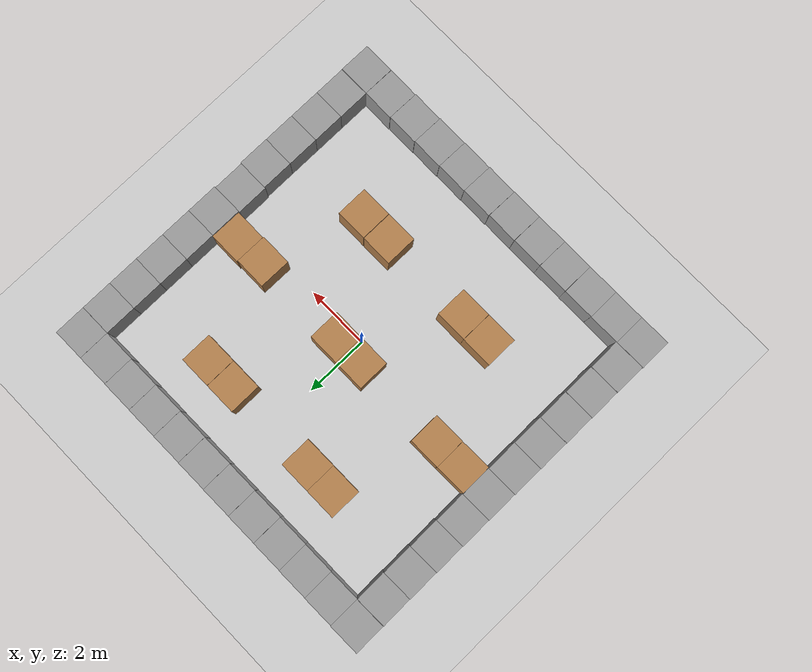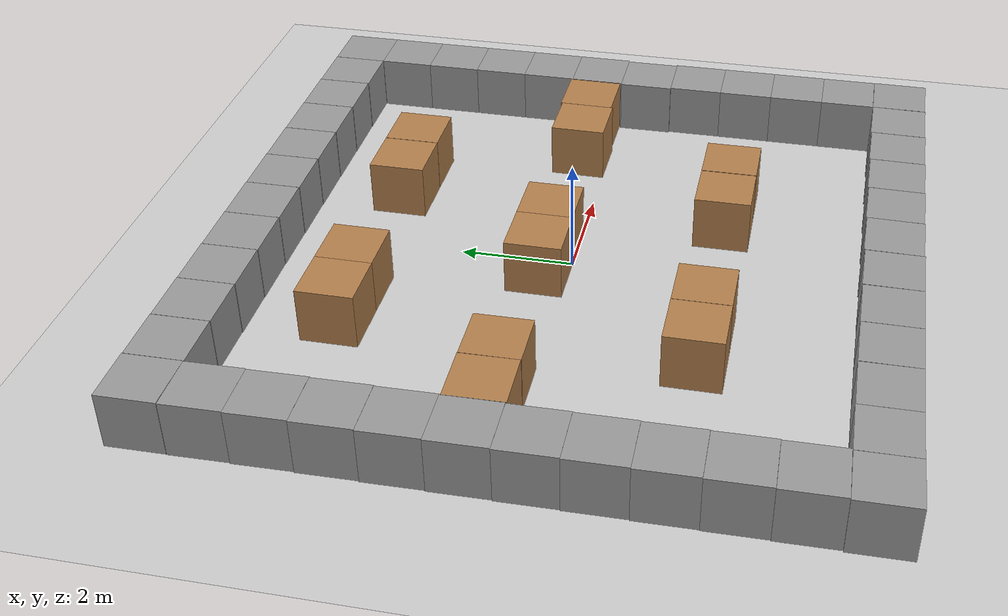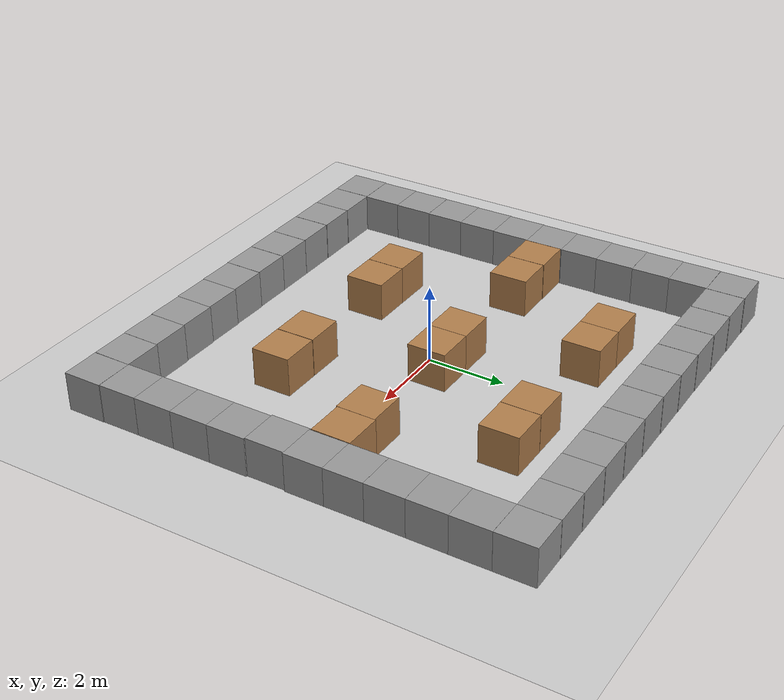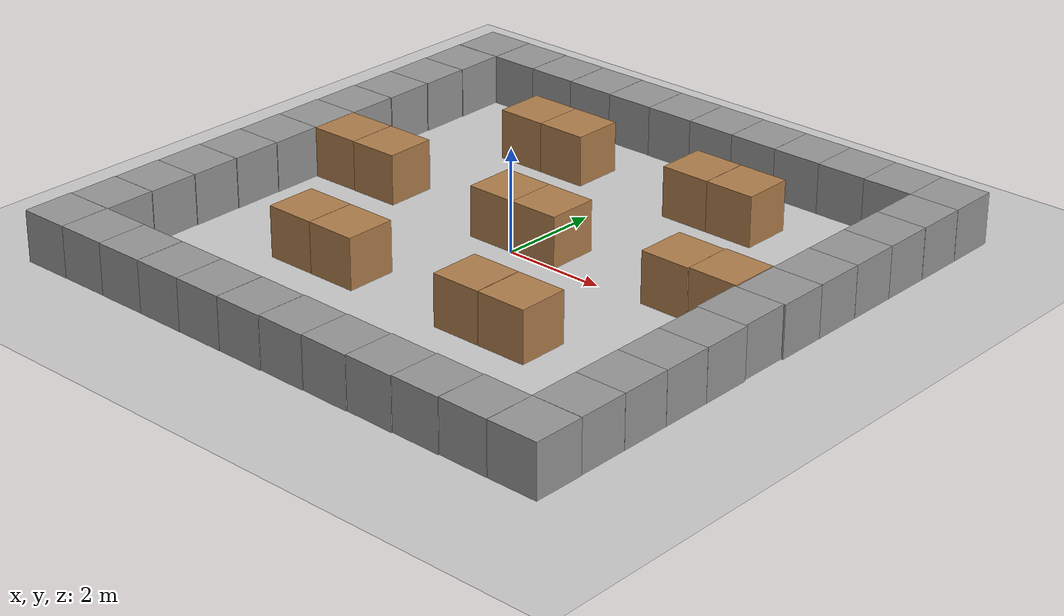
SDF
<sdf version="1.6">
 <world name="default">
  <light name="sun" type="directional">
   <pose>0 0 10 0 -0 0</pose>
   <diffuse>0.8 0.8 0.8 1</diffuse>
   <specular>0.1 0.1 0.1 1</specular>
   <attenuation>
    <range>1000</range>
    <constant>0.9</constant>
    <linear>0.01</linear>
    <quadratic>0.001</quadratic>
   </attenuation>
   <direction>-0.5 0.5 -1</direction>
  </light>
  <model name="ground_plane">
   <static>1</static>
   <link name="link">
    <collision name="collision">
     <geometry><plane><normal>0 0 1</normal><size>100 100</size></plane></geometry>
     <surface><friction><ode><mu>100</mu><mu2>50</mu2></ode></friction></surface>
    </collision>
    <visual name="visual">
     <cast_shadows>0</cast_shadows>
     <geometry><plane><normal>0 0 1</normal><size>100 100</size></plane></geometry>
     <material>
      <script><uri>file://media/materials/scripts/gazebo.material</uri><name>Gazebo/Grey</name></script>
     </material>
    </visual>
   </link>
  </model>
  <gravity>0 0 -9.8</gravity>
  <magnetic_field>6e-06 2.3e-05 -4.2e-05</magnetic_field>
  <atmosphere type="adiabatic"/>
  <physics name="default_physics" default="0" type="ode">
   <max_step_size>0.001</max_step_size>
   <real_time_factor>1</real_time_factor>
   <real_time_update_rate>1000</real_time_update_rate>
  </physics>
  <scene><ambient>0.4 0.4 0.4 1</ambient><background>0.7 0.7 0.7 1</background><shadows>1</shadows></scene>
  <spherical_coordinates>
   <surface_model>EARTH_WGS84</surface_model>
   <latitude_deg>0</latitude_deg>
   <longitude_deg>0</longitude_deg>
   <elevation>0</elevation>
   <heading_deg>0</heading_deg>
  </spherical_coordinates>
  <model name="unit_box_0">
   <pose>-4.49683 0.492419 0.499995 -1e-05 -0 0.01845</pose>
   <link name="link">
    <inertial>
     <mass>1</mass>
     <inertia>
      <ixx>0.166667</ixx>
      <ixy>0</ixy>
      <ixz>0</ixz>
      <iyy>0.166667</iyy>
      <iyz>0</iyz>
      <izz>0.166667</izz>
     </inertia>
    </inertial>
    <collision name="collision"><geometry><box><size>1 1 1</size></box></geometry></collision>
    <visual name="visual">
     <geometry><box><size>1 1 1</size></box></geometry>
     <material>
      <script><name>Gazebo/Wood</name><uri>file://media/materials/scripts/gazebo.material</uri></script>
     </material>
    </visual>
   </link>
  </model>
  <model name="unit_box_1">
   <pose>-3.49366 0.501358 0.499995 0 -1e-05 0.012151</pose>
   <link name="link">
    <inertial>
     <mass>1</mass>
     <inertia>
      <ixx>0.166667</ixx>
      <ixy>0</ixy>
      <ixz>0</ixz>
      <iyy>0.166667</iyy>
      <iyz>0</iyz>
      <izz>0.166667</izz>
     </inertia>
    </inertial>
    <collision name="collision"><geometry><box><size>1 1 1</size></box></geometry></collision>
    <visual name="visual">
     <geometry><box><size>1 1 1</size></box></geometry>
     <material>
      <script><name>Gazebo/Wood</name><uri>file://media/materials/scripts/gazebo.material</uri></script>
     </material>
    </visual>
   </link>
  </model>
  <model name="unit_box_6">
   <pose>3.4789 0.500929 0.499995 0 -1e-05 -0.007308</pose>
   <link name="link">
    <inertial>
     <mass>1</mass>
     <inertia>
      <ixx>0.166667</ixx>
      <ixy>0</ixy>
      <ixz>0</ixz>
      <iyy>0.166667</iyy>
      <iyz>0</iyz>
      <izz>0.166667</izz>
     </inertia>
    </inertial>
    <collision name="collision"><geometry><box><size>1 1 1</size></box></geometry></collision>
    <visual name="visual">
     <geometry><box><size>1 1 1</size></box></geometry>
     <material>
      <script><name>Gazebo/Wood</name><uri>file://media/materials/scripts/gazebo.material</uri></script>
     </material>
    </visual>
   </link>
  </model>
  <model name="unit_box_7">
   <pose>4.47957 0.524833 0.499995 0 -1e-05 -0.006362</pose>
   <link name="link">
    <inertial>
     <mass>1</mass>
     <inertia>
      <ixx>0.166667</ixx>
      <ixy>0</ixy>
      <ixz>0</ixz>
      <iyy>0.166667</iyy>
      <iyz>0</iyz>
      <izz>0.166667</izz>
     </inertia>
    </inertial>
    <collision name="collision"><geometry><box><size>1 1 1</size></box></geometry></collision>
    <visual name="visual">
     <geometry><box><size>1 1 1</size></box></geometry>
     <material>
      <script><name>Gazebo/Wood</name><uri>file://media/materials/scripts/gazebo.material</uri></script>
     </material>
    </visual>
   </link>
  </model>
  <model name="unit_box_8">
   <pose>-2.50432 -2.50004 0.499995 0 1e-05 0.000101</pose>
   <link name="link">
    <inertial>
     <mass>1</mass>
     <inertia>
      <ixx>0.166667</ixx>
      <ixy>0</ixy>
      <ixz>0</ixz>
      <iyy>0.166667</iyy>
      <iyz>0</iyz>
      <izz>0.166667</izz>
     </inertia>
    </inertial>
    <collision name="collision"><geometry><box><size>1 1 1</size></box></geometry></collision>
    <visual name="visual">
     <geometry><box><size>1 1 1</size></box></geometry>
     <material>
      <script><name>Gazebo/Wood</name><uri>file://media/materials/scripts/gazebo.material</uri></script>
     </material>
    </visual>
   </link>
  </model>
  <model name="unit_box_9">
   <pose>-1.49998 -2.49998 0.499995 0 1e-05 0.000107</pose>
   <link name="link">
    <inertial>
     <mass>1</mass>
     <inertia>
      <ixx>0.166667</ixx>
      <ixy>0</ixy>
      <ixz>0</ixz>
      <iyy>0.166667</iyy>
      <iyz>0</iyz>
      <izz>0.166667</izz>
     </inertia>
    </inertial>
    <collision name="collision"><geometry><box><size>1 1 1</size></box></geometry></collision>
    <visual name="visual">
     <geometry><box><size>1 1 1</size></box></geometry>
     <material>
      <script><name>Gazebo/Wood</name><uri>file://media/materials/scripts/gazebo.material</uri></script>
     </material>
    </visual>
   </link>
  </model>
  <model name="unit_box_10">
   <pose>1.48697 -2.50031 0.499995 1e-05 -0 0.000579</pose>
   <link name="link">
    <inertial>
     <mass>1</mass>
     <inertia>
      <ixx>0.166667</ixx>
      <ixy>0</ixy>
      <ixz>0</ixz>
      <iyy>0.166667</iyy>
      <iyz>0</iyz>
      <izz>0.166667</izz>
     </inertia>
    </inertial>
    <collision name="collision"><geometry><box><size>1 1 1</size></box></geometry></collision>
    <visual name="visual">
     <geometry><box><size>1 1 1</size></box></geometry>
     <material>
      <script><name>Gazebo/Wood</name><uri>file://media/materials/scripts/gazebo.material</uri></script>
     </material>
    </visual>
   </link>
  </model>
  <model name="unit_box_11">
   <pose>2.5 -2.49998 0.499995 0 1e-05 0.000577</pose>
   <link name="link">
    <inertial>
     <mass>1</mass>
     <inertia>
      <ixx>0.166667</ixx>
      <ixy>0</ixy>
      <ixz>0</ixz>
      <iyy>0.166667</iyy>
      <iyz>0</iyz>
      <izz>0.166667</izz>
     </inertia>
    </inertial>
    <collision name="collision"><geometry><box><size>1 1 1</size></box></geometry></collision>
    <visual name="visual">
     <geometry><box><size>1 1 1</size></box></geometry>
     <material>
      <script><name>Gazebo/Wood</name><uri>file://media/materials/scripts/gazebo.material</uri></script>
     </material>
    </visual>
   </link>
  </model>
  <model name="unit_box_12">
   <pose>-2.5 3.50002 0.499995 0 1e-05 0</pose>
   <link name="link">
    <inertial>
     <mass>1</mass>
     <inertia>
      <ixx>0.166667</ixx>
      <ixy>0</ixy>
      <ixz>0</ixz>
      <iyy>0.166667</iyy>
      <iyz>0</iyz>
      <izz>0.166667</izz>
     </inertia>
    </inertial>
    <collision name="collision"><geometry><box><size>1 1 1</size></box></geometry></collision>
    <visual name="visual">
     <geometry><box><size>1 1 1</size></box></geometry>
     <material>
      <script><name>Gazebo/Wood</name><uri>file://media/materials/scripts/gazebo.material</uri></script>
     </material>
    </visual>
   </link>
  </model>
  <model name="unit_box_13">
   <pose>-1.49999 3.50002 0.499995 0 1e-05 1.3e-05</pose>
   <link name="link">
    <inertial>
     <mass>1</mass>
     <inertia>
      <ixx>0.166667</ixx>
      <ixy>0</ixy>
      <ixz>0</ixz>
      <iyy>0.166667</iyy>
      <iyz>0</iyz>
      <izz>0.166667</izz>
     </inertia>
    </inertial>
    <collision name="collision"><geometry><box><size>1 1 1</size></box></geometry></collision>
    <visual name="visual">
     <geometry><box><size>1 1 1</size></box></geometry>
     <material>
      <script><name>Gazebo/Wood</name><uri>file://media/materials/scripts/gazebo.material</uri></script>
     </material>
    </visual>
   </link>
  </model>
  <model name="unit_box_14">
   <pose>1.49419 3.5002 0.499995 0 1e-05 -0.000432</pose>
   <link name="link">
    <inertial>
     <mass>1</mass>
     <inertia>
      <ixx>0.166667</ixx>
      <ixy>0</ixy>
      <ixz>0</ixz>
      <iyy>0.166667</iyy>
      <iyz>0</iyz>
      <izz>0.166667</izz>
     </inertia>
    </inertial>
    <collision name="collision"><geometry><box><size>1 1 1</size></box></geometry></collision>
    <visual name="visual">
     <geometry><box><size>1 1 1</size></box></geometry>
     <material>
      <script><name>Gazebo/Wood</name><uri>file://media/materials/scripts/gazebo.material</uri></script>
     </material>
    </visual>
   </link>
  </model>
  <model name="unit_box_15">
   <pose>2.5 3.5 0.499995 -1e-05 -0 -0.000436</pose>
   <link name="link">
    <inertial>
     <mass>1</mass>
     <inertia>
      <ixx>0.166667</ixx>
      <ixy>0</ixy>
      <ixz>0</ixz>
      <iyy>0.166667</iyy>
      <iyz>0</iyz>
      <izz>0.166667</izz>
     </inertia>
    </inertial>
    <collision name="collision"><geometry><box><size>1 1 1</size></box></geometry></collision>
    <visual name="visual">
     <geometry><box><size>1 1 1</size></box></geometry>
     <material>
      <script><name>Gazebo/Wood</name><uri>file://media/materials/scripts/gazebo.material</uri></script>
     </material>
    </visual>
   </link>
  </model>
  <model name="unit_box_2">
   <pose>-5.51352 -5.51255 0.499995 -1e-05 -0 0.009769</pose>
   <link name="link">
    <inertial>
     <mass>1</mass>
     <inertia>
      <ixx>0.166667</ixx>
      <ixy>0</ixy>
      <ixz>0</ixz>
      <iyy>0.166667</iyy>
      <iyz>0</iyz>
      <izz>0.166667</izz>
     </inertia>
    </inertial>
    <collision name="collision"><geometry><box><size>1 1 1</size></box></geometry></collision>
    <visual name="visual">
     <geometry><box><size>1 1 1</size></box></geometry>
     <material>
      <script><name>Gazebo/Grey</name><uri>file://media/materials/scripts/gazebo.material</uri></script>
     </material>
    </visual>
   </link>
  </model>
  <model name="unit_box_3">
   <pose>-4.51201 -5.5017 0.499995 1e-05 -0 0.006627</pose>
   <link name="link">
    <inertial>
     <mass>1</mass>
     <inertia>
      <ixx>0.166667</ixx>
      <ixy>0</ixy>
      <ixz>0</ixz>
      <iyy>0.166667</iyy>
      <iyz>0</iyz>
      <izz>0.166667</izz>
     </inertia>
    </inertial>
    <collision name="collision"><geometry><box><size>1 1 1</size></box></geometry></collision>
    <visual name="visual">
     <geometry><box><size>1 1 1</size></box></geometry>
     <material>
      <script><name>Gazebo/Grey</name><uri>file://media/materials/scripts/gazebo.material</uri></script>
     </material>
    </visual>
   </link>
  </model>
  <model name="unit_box_16">
   <pose>-3.51171 -5.50185 0.499995 1e-05 -0 0.006086</pose>
   <link name="link">
    <inertial>
     <mass>1</mass>
     <inertia>
      <ixx>0.166667</ixx>
      <ixy>0</ixy>
      <ixz>0</ixz>
      <iyy>0.166667</iyy>
      <iyz>0</iyz>
      <izz>0.166667</izz>
     </inertia>
    </inertial>
    <collision name="collision"><geometry><box><size>1 1 1</size></box></geometry></collision>
    <visual name="visual">
     <geometry><box><size>1 1 1</size></box></geometry>
     <material>
      <script><name>Gazebo/Grey</name><uri>file://media/materials/scripts/gazebo.material</uri></script>
     </material>
    </visual>
   </link>
  </model>
  <model name="unit_box_17">
   <pose>-2.50808 -5.50169 0.499995 1e-05 0 -0.001179</pose>
   <link name="link">
    <inertial>
     <mass>1</mass>
     <inertia>
      <ixx>0.166667</ixx>
      <ixy>0</ixy>
      <ixz>0</ixz>
      <iyy>0.166667</iyy>
      <iyz>0</iyz>
      <izz>0.166667</izz>
     </inertia>
    </inertial>
    <collision name="collision"><geometry><box><size>1 1 1</size></box></geometry></collision>
    <visual name="visual">
     <geometry><box><size>1 1 1</size></box></geometry>
     <material>
      <script><name>Gazebo/Grey</name><uri>file://media/materials/scripts/gazebo.material</uri></script>
     </material>
    </visual>
   </link>
  </model>
  <model name="unit_box_18">
   <pose>-1.50666 -5.50295 0.499995 1e-05 0 -0.004037</pose>
   <link name="link">
    <inertial>
     <mass>1</mass>
     <inertia>
      <ixx>0.166667</ixx>
      <ixy>0</ixy>
      <ixz>0</ixz>
      <iyy>0.166667</iyy>
      <iyz>0</iyz>
      <izz>0.166667</izz>
     </inertia>
    </inertial>
    <collision name="collision"><geometry><box><size>1 1 1</size></box></geometry></collision>
    <visual name="visual">
     <geometry><box><size>1 1 1</size></box></geometry>
     <material>
      <script><name>Gazebo/Grey</name><uri>file://media/materials/scripts/gazebo.material</uri></script>
     </material>
    </visual>
   </link>
  </model>
  <model name="unit_box_19">
   <pose>-0.50284 -5.50492 0.499995 0 -1e-05 -0.011695</pose>
   <link name="link">
    <inertial>
     <mass>1</mass>
     <inertia>
      <ixx>0.166667</ixx>
      <ixy>0</ixy>
      <ixz>0</ixz>
      <iyy>0.166667</iyy>
      <iyz>0</iyz>
      <izz>0.166667</izz>
     </inertia>
    </inertial>
    <collision name="collision"><geometry><box><size>1 1 1</size></box></geometry></collision>
    <visual name="visual">
     <geometry><box><size>1 1 1</size></box></geometry>
     <material>
      <script><name>Gazebo/Grey</name><uri>file://media/materials/scripts/gazebo.material</uri></script>
     </material>
    </visual>
   </link>
  </model>
  <model name="unit_box_20">
   <pose>0.500206 -5.50139 0.499995 -1e-05 -0 -0.017529</pose>
   <link name="link">
    <inertial>
     <mass>1</mass>
     <inertia>
      <ixx>0.166667</ixx>
      <ixy>0</ixy>
      <ixz>0</ixz>
      <iyy>0.166667</iyy>
      <iyz>0</iyz>
      <izz>0.166667</izz>
     </inertia>
    </inertial>
    <collision name="collision"><geometry><box><size>1 1 1</size></box></geometry></collision>
    <visual name="visual">
     <geometry><box><size>1 1 1</size></box></geometry>
     <material>
      <script><name>Gazebo/Grey</name><uri>file://media/materials/scripts/gazebo.material</uri></script>
     </material>
    </visual>
   </link>
  </model>
  <model name="unit_box_21">
   <pose>1.50038 -5.50343 0.499995 -0 1e-05 -0.017481</pose>
   <link name="link">
    <inertial>
     <mass>1</mass>
     <inertia>
      <ixx>0.166667</ixx>
      <ixy>0</ixy>
      <ixz>0</ixz>
      <iyy>0.166667</iyy>
      <iyz>0</iyz>
      <izz>0.166667</izz>
     </inertia>
    </inertial>
    <collision name="collision"><geometry><box><size>1 1 1</size></box></geometry></collision>
    <visual name="visual">
     <geometry><box><size>1 1 1</size></box></geometry>
     <material>
      <script><name>Gazebo/Grey</name><uri>file://media/materials/scripts/gazebo.material</uri></script>
     </material>
    </visual>
   </link>
  </model>
  <model name="unit_box_22">
   <pose>2.50079 -5.50219 0.499995 0 1e-05 -0.017021</pose>
   <link name="link">
    <inertial>
     <mass>1</mass>
     <inertia>
      <ixx>0.166667</ixx>
      <ixy>0</ixy>
      <ixz>0</ixz>
      <iyy>0.166667</iyy>
      <iyz>0</iyz>
      <izz>0.166667</izz>
     </inertia>
    </inertial>
    <collision name="collision"><geometry><box><size>1 1 1</size></box></geometry></collision>
    <visual name="visual">
     <geometry><box><size>1 1 1</size></box></geometry>
     <material>
      <script><name>Gazebo/Grey</name><uri>file://media/materials/scripts/gazebo.material</uri></script>
     </material>
    </visual>
   </link>
  </model>
  <model name="unit_box_23">
   <pose>3.50126 -5.49957 0.499995 0 -1e-05 -0.016436</pose>
   <link name="link">
    <inertial>
     <mass>1</mass>
     <inertia>
      <ixx>0.166667</ixx>
      <ixy>0</ixy>
      <ixz>0</ixz>
      <iyy>0.166667</iyy>
      <iyz>0</iyz>
      <izz>0.166667</izz>
     </inertia>
    </inertial>
    <collision name="collision"><geometry><box><size>1 1 1</size></box></geometry></collision>
    <visual name="visual">
     <geometry><box><size>1 1 1</size></box></geometry>
     <material>
      <script><name>Gazebo/Grey</name><uri>file://media/materials/scripts/gazebo.material</uri></script>
     </material>
    </visual>
   </link>
  </model>
  <model name="unit_box_24">
   <pose>4.50235 -5.49819 0.499995 1e-05 -0 -0.014537</pose>
   <link name="link">
    <inertial>
     <mass>1</mass>
     <inertia>
      <ixx>0.166667</ixx>
      <ixy>0</ixy>
      <ixz>0</ixz>
      <iyy>0.166667</iyy>
      <iyz>0</iyz>
      <izz>0.166667</izz>
     </inertia>
    </inertial>
    <collision name="collision"><geometry><box><size>1 1 1</size></box></geometry></collision>
    <visual name="visual">
     <geometry><box><size>1 1 1</size></box></geometry>
     <material>
      <script><name>Gazebo/Grey</name><uri>file://media/materials/scripts/gazebo.material</uri></script>
     </material>
    </visual>
   </link>
  </model>
  <model name="unit_box_25">
   <pose>5.50703 -5.50382 0.499995 1e-05 0 -0.005118</pose>
   <link name="link">
    <inertial>
     <mass>1</mass>
     <inertia>
      <ixx>0.166667</ixx>
      <ixy>0</ixy>
      <ixz>0</ixz>
      <iyy>0.166667</iyy>
      <iyz>0</iyz>
      <izz>0.166667</izz>
     </inertia>
    </inertial>
    <collision name="collision"><geometry><box><size>1 1 1</size></box></geometry></collision>
    <visual name="visual">
     <geometry><box><size>1 1 1</size></box></geometry>
     <material>
      <script><name>Gazebo/Grey</name><uri>file://media/materials/scripts/gazebo.material</uri></script>
     </material>
    </visual>
   </link>
  </model>
  <model name="unit_box_26">
   <pose>5.50002 -4.50052 0.499995 1e-05 0 0.001427</pose>
   <link name="link">
    <inertial>
     <mass>1</mass>
     <inertia>
      <ixx>0.166667</ixx>
      <ixy>0</ixy>
      <ixz>0</ixz>
      <iyy>0.166667</iyy>
      <iyz>0</iyz>
      <izz>0.166667</izz>
     </inertia>
    </inertial>
    <collision name="collision"><geometry><box><size>1 1 1</size></box></geometry></collision>
    <visual name="visual">
     <geometry><box><size>1 1 1</size></box></geometry>
     <material>
      <script><name>Gazebo/Grey</name><uri>file://media/materials/scripts/gazebo.material</uri></script>
     </material>
    </visual>
   </link>
  </model>
  <model name="unit_box_27">
   <pose>5.49995 -3.50044 0.499995 0 -1e-05 0.001531</pose>
   <link name="link">
    <inertial>
     <mass>1</mass>
     <inertia>
      <ixx>0.166667</ixx>
      <ixy>0</ixy>
      <ixz>0</ixz>
      <iyy>0.166667</iyy>
      <iyz>0</iyz>
      <izz>0.166667</izz>
     </inertia>
    </inertial>
    <collision name="collision"><geometry><box><size>1 1 1</size></box></geometry></collision>
    <visual name="visual">
     <geometry><box><size>1 1 1</size></box></geometry>
     <material>
      <script><name>Gazebo/Grey</name><uri>file://media/materials/scripts/gazebo.material</uri></script>
     </material>
    </visual>
   </link>
  </model>
  <model name="unit_box_28">
   <pose>5.5002 -2.50043 0.499995 1e-05 -0 0.001526</pose>
   <link name="link">
    <inertial>
     <mass>1</mass>
     <inertia>
      <ixx>0.166667</ixx>
      <ixy>0</ixy>
      <ixz>0</ixz>
      <iyy>0.166667</iyy>
      <iyz>0</iyz>
      <izz>0.166667</izz>
     </inertia>
    </inertial>
    <collision name="collision"><geometry><box><size>1 1 1</size></box></geometry></collision>
    <visual name="visual">
     <geometry><box><size>1 1 1</size></box></geometry>
     <material>
      <script><name>Gazebo/Grey</name><uri>file://media/materials/scripts/gazebo.material</uri></script>
     </material>
    </visual>
   </link>
  </model>
  <model name="unit_box_29">
   <pose>5.50029 -1.50039 0.499995 -1e-05 -0 0.001462</pose>
   <link name="link">
    <inertial>
     <mass>1</mass>
     <inertia>
      <ixx>0.166667</ixx>
      <ixy>0</ixy>
      <ixz>0</ixz>
      <iyy>0.166667</iyy>
      <iyz>0</iyz>
      <izz>0.166667</izz>
     </inertia>
    </inertial>
    <collision name="collision"><geometry><box><size>1 1 1</size></box></geometry></collision>
    <visual name="visual">
     <geometry><box><size>1 1 1</size></box></geometry>
     <material>
      <script><name>Gazebo/Grey</name><uri>file://media/materials/scripts/gazebo.material</uri></script>
     </material>
    </visual>
   </link>
  </model>
  <model name="unit_box_30">
   <pose>5.46771 -0.500412 0.499995 0 1e-05 0.001405</pose>
   <link name="link">
    <inertial>
     <mass>1</mass>
     <inertia>
      <ixx>0.166667</ixx>
      <ixy>0</ixy>
      <ixz>0</ixz>
      <iyy>0.166667</iyy>
      <iyz>0</iyz>
      <izz>0.166667</izz>
     </inertia>
    </inertial>
    <collision name="collision"><geometry><box><size>1 1 1</size></box></geometry></collision>
    <visual name="visual">
     <geometry><box><size>1 1 1</size></box></geometry>
     <material>
      <script><name>Gazebo/Grey</name><uri>file://media/materials/scripts/gazebo.material</uri></script>
     </material>
    </visual>
   </link>
  </model>
  <model name="unit_box_31">
   <pose>5.50052 0.499698 0.5 0 -0 0.001281</pose>
   <link name="link">
    <inertial>
     <mass>1</mass>
     <inertia>
      <ixx>0.166667</ixx>
      <ixy>0</ixy>
      <ixz>0</ixz>
      <iyy>0.166667</iyy>
      <iyz>0</iyz>
      <izz>0.166667</izz>
     </inertia>
    </inertial>
    <collision name="collision"><geometry><box><size>1 1 1</size></box></geometry></collision>
    <visual name="visual">
     <geometry><box><size>1 1 1</size></box></geometry>
     <material>
      <script><name>Gazebo/Grey</name><uri>file://media/materials/scripts/gazebo.material</uri></script>
     </material>
    </visual>
   </link>
  </model>
  <model name="unit_box_32">
   <pose>5.50043 1.49973 0.5 0 -0 0.001231</pose>
   <link name="link">
    <inertial>
     <mass>1</mass>
     <inertia>
      <ixx>0.166667</ixx>
      <ixy>0</ixy>
      <ixz>0</ixz>
      <iyy>0.166667</iyy>
      <iyz>0</iyz>
      <izz>0.166667</izz>
     </inertia>
    </inertial>
    <collision name="collision"><geometry><box><size>1 1 1</size></box></geometry></collision>
    <visual name="visual">
     <geometry><box><size>1 1 1</size></box></geometry>
     <material>
      <script><name>Gazebo/Grey</name><uri>file://media/materials/scripts/gazebo.material</uri></script>
     </material>
    </visual>
   </link>
  </model>
  <model name="unit_box_33">
   <pose>5.50069 2.49987 0.499995 1e-05 0 0.000951</pose>
   <link name="link">
    <inertial>
     <mass>1</mass>
     <inertia>
      <ixx>0.166667</ixx>
      <ixy>0</ixy>
      <ixz>0</ixz>
      <iyy>0.166667</iyy>
      <iyz>0</iyz>
      <izz>0.166667</izz>
     </inertia>
    </inertial>
    <collision name="collision"><geometry><box><size>1 1 1</size></box></geometry></collision>
    <visual name="visual">
     <geometry><box><size>1 1 1</size></box></geometry>
     <material>
      <script><name>Gazebo/Grey</name><uri>file://media/materials/scripts/gazebo.material</uri></script>
     </material>
    </visual>
   </link>
  </model>
  <model name="unit_box_34">
   <pose>5.50059 3.49994 0.499995 -0 -1e-05 0.001078</pose>
   <link name="link">
    <inertial>
     <mass>1</mass>
     <inertia>
      <ixx>0.166667</ixx>
      <ixy>0</ixy>
      <ixz>0</ixz>
      <iyy>0.166667</iyy>
      <iyz>0</iyz>
      <izz>0.166667</izz>
     </inertia>
    </inertial>
    <collision name="collision"><geometry><box><size>1 1 1</size></box></geometry></collision>
    <visual name="visual">
     <geometry><box><size>1 1 1</size></box></geometry>
     <material>
      <script><name>Gazebo/Grey</name><uri>file://media/materials/scripts/gazebo.material</uri></script>
     </material>
    </visual>
   </link>
  </model>
  <model name="unit_box_35">
   <pose>5.50232 4.49995 0.499995 0 1e-05 0.001081</pose>
   <link name="link">
    <inertial>
     <mass>1</mass>
     <inertia>
      <ixx>0.166667</ixx>
      <ixy>0</ixy>
      <ixz>0</ixz>
      <iyy>0.166667</iyy>
      <iyz>0</iyz>
      <izz>0.166667</izz>
     </inertia>
    </inertial>
    <collision name="collision"><geometry><box><size>1 1 1</size></box></geometry></collision>
    <visual name="visual">
     <geometry><box><size>1 1 1</size></box></geometry>
     <material>
      <script><name>Gazebo/Grey</name><uri>file://media/materials/scripts/gazebo.material</uri></script>
     </material>
    </visual>
   </link>
  </model>
  <model name="unit_box_36">
   <pose>5.50042 5.50143 0.499995 -1e-05 0 0.003932</pose>
   <link name="link">
    <inertial>
     <mass>1</mass>
     <inertia>
      <ixx>0.166667</ixx>
      <ixy>0</ixy>
      <ixz>0</ixz>
      <iyy>0.166667</iyy>
      <iyz>0</iyz>
      <izz>0.166667</izz>
     </inertia>
    </inertial>
    <collision name="collision"><geometry><box><size>1 1 1</size></box></geometry></collision>
    <visual name="visual">
     <geometry><box><size>1 1 1</size></box></geometry>
     <material>
      <script><name>Gazebo/Grey</name><uri>file://media/materials/scripts/gazebo.material</uri></script>
     </material>
    </visual>
   </link>
  </model>
  <model name="unit_box_37">
   <pose>4.49938 5.5001 0.499995 -1e-05 -0 0.005984</pose>
   <link name="link">
    <inertial>
     <mass>1</mass>
     <inertia>
      <ixx>0.166667</ixx>
      <ixy>0</ixy>
      <ixz>0</ixz>
      <iyy>0.166667</iyy>
      <iyz>0</iyz>
      <izz>0.166667</izz>
     </inertia>
    </inertial>
    <collision name="collision"><geometry><box><size>1 1 1</size></box></geometry></collision>
    <visual name="visual">
     <geometry><box><size>1 1 1</size></box></geometry>
     <material>
      <script><name>Gazebo/Grey</name><uri>file://media/materials/scripts/gazebo.material</uri></script>
     </material>
    </visual>
   </link>
  </model>
  <model name="unit_box_38">
   <pose>3.49904 5.50005 0.499995 1e-05 -0 0.006626</pose>
   <link name="link">
    <inertial>
     <mass>1</mass>
     <inertia>
      <ixx>0.166667</ixx>
      <ixy>0</ixy>
      <ixz>0</ixz>
      <iyy>0.166667</iyy>
      <iyz>0</iyz>
      <izz>0.166667</izz>
     </inertia>
    </inertial>
    <collision name="collision"><geometry><box><size>1 1 1</size></box></geometry></collision>
    <visual name="visual">
     <geometry><box><size>1 1 1</size></box></geometry>
     <material>
      <script><name>Gazebo/Grey</name><uri>file://media/materials/scripts/gazebo.material</uri></script>
     </material>
    </visual>
   </link>
  </model>
  <model name="unit_box_39">
   <pose>2.49841 5.50002 0.499995 1e-05 0 0.006731</pose>
   <link name="link">
    <inertial>
     <mass>1</mass>
     <inertia>
      <ixx>0.166667</ixx>
      <ixy>0</ixy>
      <ixz>0</ixz>
      <iyy>0.166667</iyy>
      <iyz>0</iyz>
      <izz>0.166667</izz>
     </inertia>
    </inertial>
    <collision name="collision"><geometry><box><size>1 1 1</size></box></geometry></collision>
    <visual name="visual">
     <geometry><box><size>1 1 1</size></box></geometry>
     <material>
      <script><name>Gazebo/Grey</name><uri>file://media/materials/scripts/gazebo.material</uri></script>
     </material>
    </visual>
   </link>
  </model>
  <model name="unit_box_40">
   <pose>1.49768 5.49997 0.499995 1e-05 -0 0.006774</pose>
   <link name="link">
    <inertial>
     <mass>1</mass>
     <inertia>
      <ixx>0.166667</ixx>
      <ixy>0</ixy>
      <ixz>0</ixz>
      <iyy>0.166667</iyy>
      <iyz>0</iyz>
      <izz>0.166667</izz>
     </inertia>
    </inertial>
    <collision name="collision"><geometry><box><size>1 1 1</size></box></geometry></collision>
    <visual name="visual">
     <geometry><box><size>1 1 1</size></box></geometry>
     <material>
      <script><name>Gazebo/Grey</name><uri>file://media/materials/scripts/gazebo.material</uri></script>
     </material>
    </visual>
   </link>
  </model>
  <model name="unit_box_41">
   <pose>0.496817 5.50002 0.499995 1e-05 0 0.00677</pose>
   <link name="link">
    <inertial>
     <mass>1</mass>
     <inertia>
      <ixx>0.166667</ixx>
      <ixy>0</ixy>
      <ixz>0</ixz>
      <iyy>0.166667</iyy>
      <iyz>0</iyz>
      <izz>0.166667</izz>
     </inertia>
    </inertial>
    <collision name="collision"><geometry><box><size>1 1 1</size></box></geometry></collision>
    <visual name="visual">
     <geometry><box><size>1 1 1</size></box></geometry>
     <material>
      <script><name>Gazebo/Grey</name><uri>file://media/materials/scripts/gazebo.material</uri></script>
     </material>
    </visual>
   </link>
  </model>
  <model name="unit_box_42">
   <pose>-0.504482 5.50024 0.499995 -1e-05 -0 0.006819</pose>
   <link name="link">
    <inertial>
     <mass>1</mass>
     <inertia>
      <ixx>0.166667</ixx>
      <ixy>0</ixy>
      <ixz>0</ixz>
      <iyy>0.166667</iyy>
      <iyz>0</iyz>
      <izz>0.166667</izz>
     </inertia>
    </inertial>
    <collision name="collision"><geometry><box><size>1 1 1</size></box></geometry></collision>
    <visual name="visual">
     <geometry><box><size>1 1 1</size></box></geometry>
     <material>
      <script><name>Gazebo/Grey</name><uri>file://media/materials/scripts/gazebo.material</uri></script>
     </material>
    </visual>
   </link>
  </model>
  <model name="unit_box_43">
   <pose>-1.50604 5.49963 0.499995 0 1e-05 0.006853</pose>
   <link name="link">
    <inertial>
     <mass>1</mass>
     <inertia>
      <ixx>0.166667</ixx>
      <ixy>0</ixy>
      <ixz>0</ixz>
      <iyy>0.166667</iyy>
      <iyz>0</iyz>
      <izz>0.166667</izz>
     </inertia>
    </inertial>
    <collision name="collision"><geometry><box><size>1 1 1</size></box></geometry></collision>
    <visual name="visual">
     <geometry><box><size>1 1 1</size></box></geometry>
     <material>
      <script><name>Gazebo/Grey</name><uri>file://media/materials/scripts/gazebo.material</uri></script>
     </material>
    </visual>
   </link>
  </model>
  <model name="unit_box_44">
   <pose>-2.50801 5.49953 0.499995 1e-05 -0 0.007223</pose>
   <link name="link">
    <inertial>
     <mass>1</mass>
     <inertia>
      <ixx>0.166667</ixx>
      <ixy>0</ixy>
      <ixz>0</ixz>
      <iyy>0.166667</iyy>
      <iyz>0</iyz>
      <izz>0.166667</izz>
     </inertia>
    </inertial>
    <collision name="collision"><geometry><box><size>1 1 1</size></box></geometry></collision>
    <visual name="visual">
     <geometry><box><size>1 1 1</size></box></geometry>
     <material>
      <script><name>Gazebo/Grey</name><uri>file://media/materials/scripts/gazebo.material</uri></script>
     </material>
    </visual>
   </link>
  </model>
  <model name="unit_box_45">
   <pose>-3.5104 5.5008 0.499995 -1e-05 -0 0.007236</pose>
   <link name="link">
    <inertial>
     <mass>1</mass>
     <inertia>
      <ixx>0.166667</ixx>
      <ixy>0</ixy>
      <ixz>0</ixz>
      <iyy>0.166667</iyy>
      <iyz>0</iyz>
      <izz>0.166667</izz>
     </inertia>
    </inertial>
    <collision name="collision"><geometry><box><size>1 1 1</size></box></geometry></collision>
    <visual name="visual">
     <geometry><box><size>1 1 1</size></box></geometry>
     <material>
      <script><name>Gazebo/Grey</name><uri>file://media/materials/scripts/gazebo.material</uri></script>
     </material>
    </visual>
   </link>
  </model>
  <model name="unit_box_46">
   <pose>-4.51345 5.50065 0.499995 0 -1e-05 0.007792</pose>
   <link name="link">
    <inertial>
     <mass>1</mass>
     <inertia>
      <ixx>0.166667</ixx>
      <ixy>0</ixy>
      <ixz>0</ixz>
      <iyy>0.166667</iyy>
      <iyz>0</iyz>
      <izz>0.166667</izz>
     </inertia>
    </inertial>
    <collision name="collision"><geometry><box><size>1 1 1</size></box></geometry></collision>
    <visual name="visual">
     <geometry><box><size>1 1 1</size></box></geometry>
     <material>
      <script><name>Gazebo/Grey</name><uri>file://media/materials/scripts/gazebo.material</uri></script>
     </material>
    </visual>
   </link>
  </model>
  <model name="unit_box_47">
   <pose>-5.51717 5.50216 0.499995 1e-05 -0 0.009934</pose>
   <link name="link">
    <inertial>
     <mass>1</mass>
     <inertia>
      <ixx>0.166667</ixx>
      <ixy>0</ixy>
      <ixz>0</ixz>
      <iyy>0.166667</iyy>
      <iyz>0</iyz>
      <izz>0.166667</izz>
     </inertia>
    </inertial>
    <collision name="collision"><geometry><box><size>1 1 1</size></box></geometry></collision>
    <visual name="visual">
     <geometry><box><size>1 1 1</size></box></geometry>
     <material>
      <script><name>Gazebo/Grey</name><uri>file://media/materials/scripts/gazebo.material</uri></script>
     </material>
    </visual>
   </link>
  </model>
  <model name="unit_box_48">
   <pose>-5.50044 -4.50982 0.499995 -0 -1e-05 0.012898</pose>
   <link name="link">
    <inertial>
     <mass>1</mass>
     <inertia>
      <ixx>0.166667</ixx>
      <ixy>0</ixy>
      <ixz>0</ixz>
      <iyy>0.166667</iyy>
      <iyz>0</iyz>
      <izz>0.166667</izz>
     </inertia>
    </inertial>
    <collision name="collision"><geometry><box><size>1 1 1</size></box></geometry></collision>
    <visual name="visual">
     <geometry><box><size>1 1 1</size></box></geometry>
     <material>
      <script><name>Gazebo/Grey</name><uri>file://media/materials/scripts/gazebo.material</uri></script>
     </material>
    </visual>
   </link>
  </model>
  <model name="unit_box_49">
   <pose>-5.49968 -3.50871 0.499995 -1e-05 -0 0.013008</pose>
   <link name="link">
    <inertial>
     <mass>1</mass>
     <inertia>
      <ixx>0.166667</ixx>
      <ixy>0</ixy>
      <ixz>0</ixz>
      <iyy>0.166667</iyy>
      <iyz>0</iyz>
      <izz>0.166667</izz>
     </inertia>
    </inertial>
    <collision name="collision"><geometry><box><size>1 1 1</size></box></geometry></collision>
    <visual name="visual">
     <geometry><box><size>1 1 1</size></box></geometry>
     <material>
      <script><name>Gazebo/Grey</name><uri>file://media/materials/scripts/gazebo.material</uri></script>
     </material>
    </visual>
   </link>
  </model>
  <model name="unit_box_50">
   <pose>-5.49964 -2.50733 0.499995 -1e-05 0 0.013053</pose>
   <link name="link">
    <inertial>
     <mass>1</mass>
     <inertia>
      <ixx>0.166667</ixx>
      <ixy>0</ixy>
      <ixz>0</ixz>
      <iyy>0.166667</iyy>
      <iyz>0</iyz>
      <izz>0.166667</izz>
     </inertia>
    </inertial>
    <collision name="collision"><geometry><box><size>1 1 1</size></box></geometry></collision>
    <visual name="visual">
     <geometry><box><size>1 1 1</size></box></geometry>
     <material>
      <script><name>Gazebo/Grey</name><uri>file://media/materials/scripts/gazebo.material</uri></script>
     </material>
    </visual>
   </link>
  </model>
  <model name="unit_box_51">
   <pose>-5.49892 -1.50658 0.5 0 -0 0.013572</pose>
   <link name="link">
    <inertial>
     <mass>1</mass>
     <inertia>
      <ixx>0.166667</ixx>
      <ixy>0</ixy>
      <ixz>0</ixz>
      <iyy>0.166667</iyy>
      <iyz>0</iyz>
      <izz>0.166667</izz>
     </inertia>
    </inertial>
    <collision name="collision"><geometry><box><size>1 1 1</size></box></geometry></collision>
    <visual name="visual">
     <geometry><box><size>1 1 1</size></box></geometry>
     <material>
      <script><name>Gazebo/Grey</name><uri>file://media/materials/scripts/gazebo.material</uri></script>
     </material>
    </visual>
   </link>
  </model>
  <model name="unit_box_52">
   <pose>-5.49972 -0.506201 0.499995 0 -1e-05 0.014165</pose>
   <link name="link">
    <inertial>
     <mass>1</mass>
     <inertia>
      <ixx>0.166667</ixx>
      <ixy>0</ixy>
      <ixz>0</ixz>
      <iyy>0.166667</iyy>
      <iyz>0</iyz>
      <izz>0.166667</izz>
     </inertia>
    </inertial>
    <collision name="collision"><geometry><box><size>1 1 1</size></box></geometry></collision>
    <visual name="visual">
     <geometry><box><size>1 1 1</size></box></geometry>
     <material>
      <script><name>Gazebo/Grey</name><uri>file://media/materials/scripts/gazebo.material</uri></script>
     </material>
    </visual>
   </link>
  </model>
  <model name="unit_box_53">
   <pose>-5.49975 0.49445 0.499995 -0 1e-05 0.01526</pose>
   <link name="link">
    <inertial>
     <mass>1</mass>
     <inertia>
      <ixx>0.166667</ixx>
      <ixy>0</ixy>
      <ixz>0</ixz>
      <iyy>0.166667</iyy>
      <iyz>0</iyz>
      <izz>0.166667</izz>
     </inertia>
    </inertial>
    <collision name="collision"><geometry><box><size>1 1 1</size></box></geometry></collision>
    <visual name="visual">
     <geometry><box><size>1 1 1</size></box></geometry>
     <material>
      <script><name>Gazebo/Grey</name><uri>file://media/materials/scripts/gazebo.material</uri></script>
     </material>
    </visual>
   </link>
  </model>
  <model name="unit_box_54">
   <pose>-5.50021 1.4948 0.499995 -0 -1e-05 0.015708</pose>
   <link name="link">
    <inertial>
     <mass>1</mass>
     <inertia>
      <ixx>0.166667</ixx>
      <ixy>0</ixy>
      <ixz>0</ixz>
      <iyy>0.166667</iyy>
      <iyz>0</iyz>
      <izz>0.166667</izz>
     </inertia>
    </inertial>
    <collision name="collision"><geometry><box><size>1 1 1</size></box></geometry></collision>
    <visual name="visual">
     <geometry><box><size>1 1 1</size></box></geometry>
     <material>
      <script><name>Gazebo/Grey</name><uri>file://media/materials/scripts/gazebo.material</uri></script>
     </material>
    </visual>
   </link>
  </model>
  <model name="unit_box_55">
   <pose>-5.50056 2.49561 0.499995 0 1e-05 0.017085</pose>
   <link name="link">
    <inertial>
     <mass>1</mass>
     <inertia>
      <ixx>0.166667</ixx>
      <ixy>0</ixy>
      <ixz>0</ixz>
      <iyy>0.166667</iyy>
      <iyz>0</iyz>
      <izz>0.166667</izz>
     </inertia>
    </inertial>
    <collision name="collision"><geometry><box><size>1 1 1</size></box></geometry></collision>
    <visual name="visual">
     <geometry><box><size>1 1 1</size></box></geometry>
     <material>
      <script><name>Gazebo/Grey</name><uri>file://media/materials/scripts/gazebo.material</uri></script>
     </material>
    </visual>
   </link>
  </model>
  <model name="unit_box_56">
   <pose>-5.50374 3.49684 0.499995 0 -1e-05 0.019282</pose>
   <link name="link">
    <inertial>
     <mass>1</mass>
     <inertia>
      <ixx>0.166667</ixx>
      <ixy>0</ixy>
      <ixz>0</ixz>
      <iyy>0.166667</iyy>
      <iyz>0</iyz>
      <izz>0.166667</izz>
     </inertia>
    </inertial>
    <collision name="collision"><geometry><box><size>1 1 1</size></box></geometry></collision>
    <visual name="visual">
     <geometry><box><size>1 1 1</size></box></geometry>
     <material>
      <script><name>Gazebo/Grey</name><uri>file://media/materials/scripts/gazebo.material</uri></script>
     </material>
    </visual>
   </link>
  </model>
  <model name="unit_box_57">
   <pose>-5.50915 4.497 0.499995 -1e-05 0 0.019381</pose>
   <link name="link">
    <inertial>
     <mass>1</mass>
     <inertia>
      <ixx>0.166667</ixx>
      <ixy>0</ixy>
      <ixz>0</ixz>
      <iyy>0.166667</iyy>
      <iyz>0</iyz>
      <izz>0.166667</izz>
     </inertia>
    </inertial>
    <collision name="collision"><geometry><box><size>1 1 1</size></box></geometry></collision>
    <visual name="visual">
     <geometry><box><size>1 1 1</size></box></geometry>
     <material>
      <script><name>Gazebo/Grey</name><uri>file://media/materials/scripts/gazebo.material</uri></script>
     </material>
    </visual>
   </link>
  </model>
  <model name="unit_box_4_0">
   <pose>-0.500002 0.500001 0.499995 -1e-05 0 0</pose>
   <link name="link">
    <inertial>
     <mass>1</mass>
     <inertia>
      <ixx>0.166667</ixx>
      <ixy>0</ixy>
      <ixz>0</ixz>
      <iyy>0.166667</iyy>
      <iyz>0</iyz>
      <izz>0.166667</izz>
     </inertia>
    </inertial>
    <collision name="collision"><geometry><box><size>1 1 1</size></box></geometry></collision>
    <visual name="visual">
     <geometry><box><size>1 1 1</size></box></geometry>
     <material>
      <script><name>Gazebo/Wood</name><uri>file://media/materials/scripts/gazebo.material</uri></script>
     </material>
    </visual>
   </link>
  </model>
  <model name="unit_box_4_1">
   <pose>0.499998 0.499996 0.499995 1e-05 -0 0</pose>
   <link name="link">
    <inertial>
     <mass>1</mass>
     <inertia>
      <ixx>0.166667</ixx>
      <ixy>0</ixy>
      <ixz>0</ixz>
      <iyy>0.166667</iyy>
      <iyz>0</iyz>
      <izz>0.166667</izz>
     </inertia>
    </inertial>
    <collision name="collision"><geometry><box><size>1 1 1</size></box></geometry></collision>
    <visual name="visual">
     <geometry><box><size>1 1 1</size></box></geometry>
     <material>
      <script><name>Gazebo/Wood</name><uri>file://media/materials/scripts/gazebo.material</uri></script>
     </material>
    </visual>
   </link>
  </model>
 </world>
</sdf>
